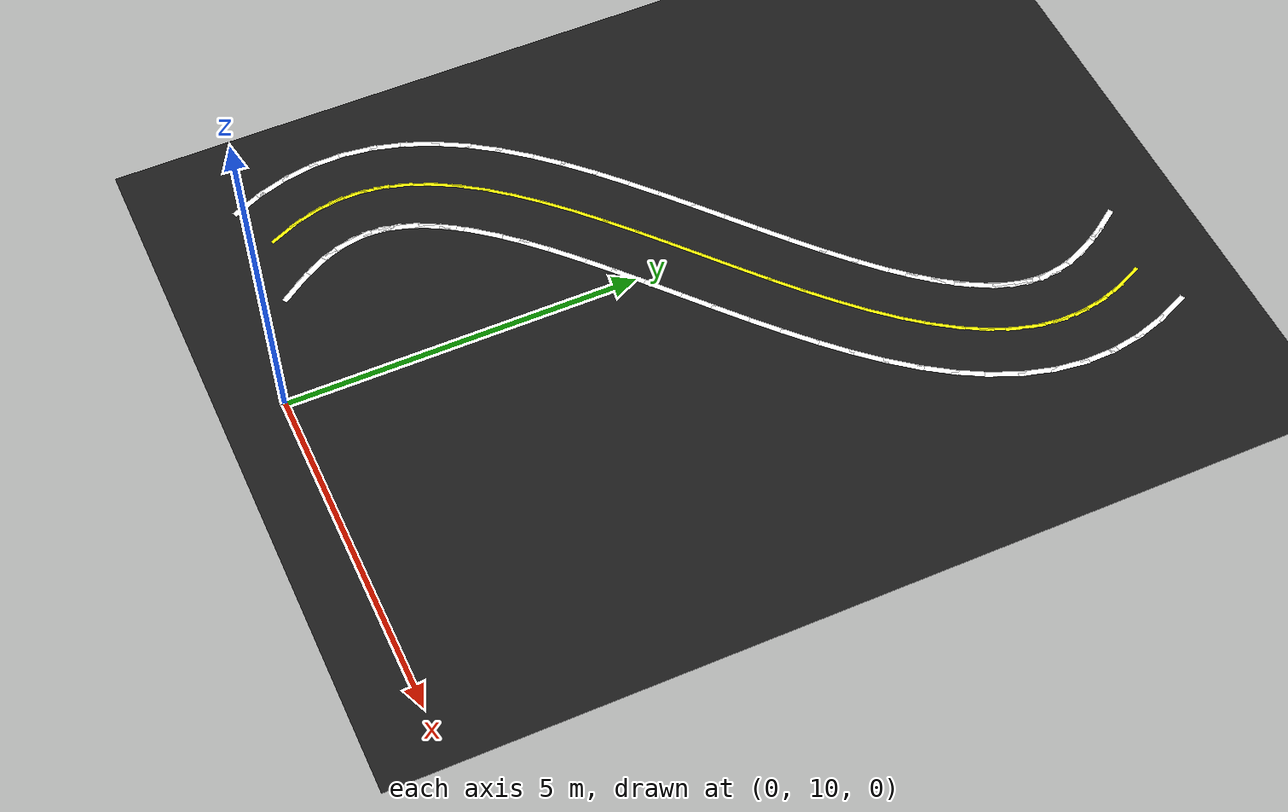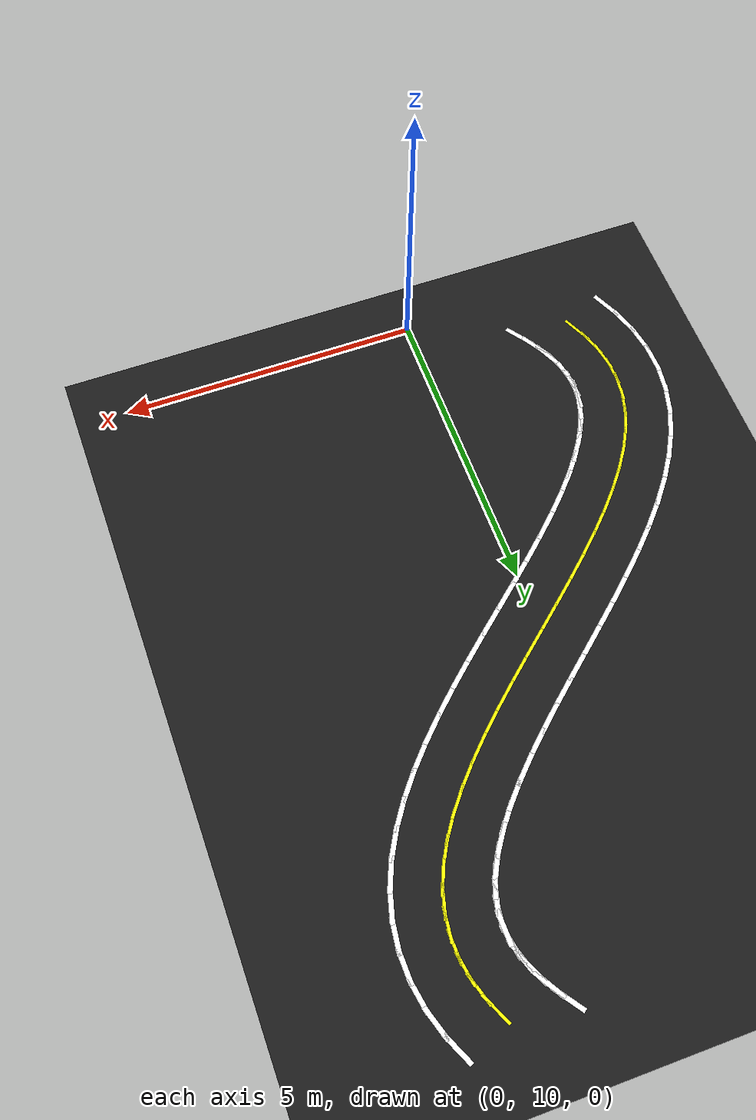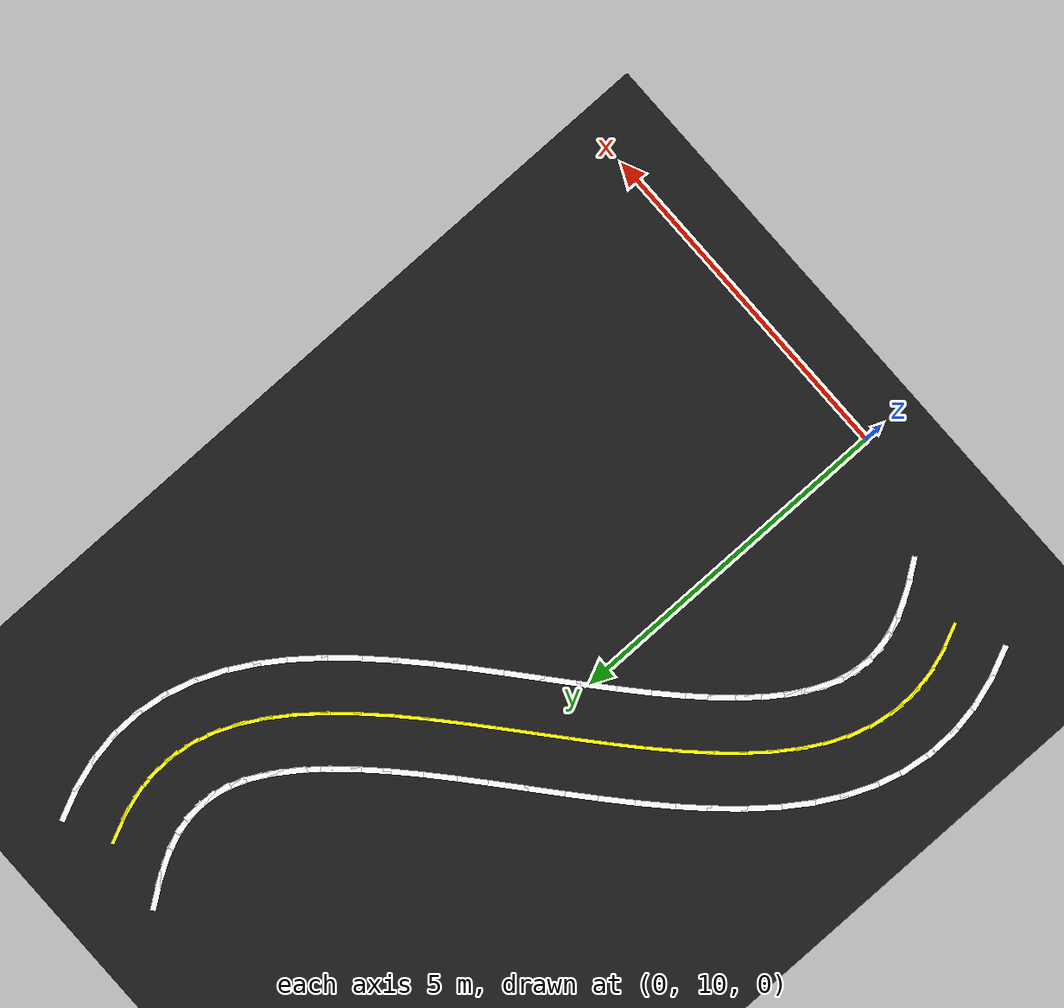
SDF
<sdf version="1.6">
 <world name="double_s_lane_world">
  <model name="ground">
   <static>true</static>
   <link name="link">
    <visual name="v">
     <geometry><plane><normal>0 0 1</normal><size>100 100</size></plane></geometry>
     <material><ambient>0.10 0.10 0.10 1</ambient><diffuse>0.10 0.10 0.10 1</diffuse></material>
    </visual>
    <collision name="c"><geometry><plane><normal>0 0 1</normal><size>100 100</size></plane></geometry></collision>
   </link>
  </model>
  <model name="seg_0097">
   <static>true</static>
   <pose>-1.7767 10.7790 0.002 0 0 2.1905</pose>
   <link name="link">
    <visual name="v">
     <geometry><box><size>0.550 0.080 0.0020</size></box></geometry>
     <material><ambient>1 1 1 1</ambient><diffuse>1 1 1 1</diffuse></material>
    </visual>
   </link>
  </model>
  <model name="seg_0100">
   <static>true</static>
   <pose>-1.9519 11.0473 0.002 0 0 2.1031</pose>
   <link name="link">
    <visual name="v">
     <geometry><box><size>0.550 0.080 0.0020</size></box></geometry>
     <material><ambient>1 1 1 1</ambient><diffuse>1 1 1 1</diffuse></material>
    </visual>
   </link>
  </model>
  <model name="seg_0102">
   <static>true</static>
   <pose>-3.4497 10.6792 0.002 0 0 1.9979</pose>
   <link name="link">
    <visual name="v">
     <geometry><box><size>0.550 0.080 0.0020</size></box></geometry>
     <material><ambient>1 1 1 1</ambient><diffuse>1 1 1 1</diffuse></material>
    </visual>
   </link>
  </model>
  <model name="seg_0103">
   <static>true</static>
   <pose>-2.0844 11.3006 0.002 0 0 1.9979</pose>
   <link name="link">
    <visual name="v">
     <geometry><box><size>0.550 0.080 0.0020</size></box></geometry>
     <material><ambient>1 1 1 1</ambient><diffuse>1 1 1 1</diffuse></material>
    </visual>
   </link>
  </model>
  <model name="seg_0104">
   <static>true</static>
   <pose>-2.7671 10.9899 0.002 0 0 1.9979</pose>
   <link name="link">
    <visual name="v">
     <geometry><box><size>0.550 0.050 0.0020</size></box></geometry>
     <material><ambient>1 1 0 1</ambient><diffuse>1 1 0 1</diffuse></material>
    </visual>
   </link>
  </model>
  <model name="seg_0105">
   <static>true</static>
   <pose>-3.6071 11.0885 0.002 0 0 1.8750</pose>
   <link name="link">
    <visual name="v">
     <geometry><box><size>0.550 0.080 0.0020</size></box></geometry>
     <material><ambient>1 1 1 1</ambient><diffuse>1 1 1 1</diffuse></material>
    </visual>
   </link>
  </model>
  <model name="seg_0106">
   <static>true</static>
   <pose>-2.1760 11.5378 0.002 0 0 1.8750</pose>
   <link name="link">
    <visual name="v">
     <geometry><box><size>0.550 0.080 0.0020</size></box></geometry>
     <material><ambient>1 1 1 1</ambient><diffuse>1 1 1 1</diffuse></material>
    </visual>
   </link>
  </model>
  <model name="seg_0107">
   <static>true</static>
   <pose>-2.8915 11.3131 0.002 0 0 1.8750</pose>
   <link name="link">
    <visual name="v">
     <geometry><box><size>0.550 0.050 0.0020</size></box></geometry>
     <material><ambient>1 1 0 1</ambient><diffuse>1 1 0 1</diffuse></material>
    </visual>
   </link>
  </model>
  <model name="seg_0108">
   <static>true</static>
   <pose>-3.7091 11.5123 0.002 0 0 1.7369</pose>
   <link name="link">
    <visual name="v">
     <geometry><box><size>0.550 0.080 0.0020</size></box></geometry>
     <material><ambient>1 1 1 1</ambient><diffuse>1 1 1 1</diffuse></material>
    </visual>
   </link>
  </model>
  <model name="seg_0109">
   <static>true</static>
   <pose>-2.2298 11.7604 0.002 0 0 1.7369</pose>
   <link name="link">
    <visual name="v">
     <geometry><box><size>0.550 0.080 0.0020</size></box></geometry>
     <material><ambient>1 1 1 1</ambient><diffuse>1 1 1 1</diffuse></material>
    </visual>
   </link>
  </model>
  <model name="seg_0110">
   <static>true</static>
   <pose>-2.9695 11.6364 0.002 0 0 1.7369</pose>
   <link name="link">
    <visual name="v">
     <geometry><box><size>0.550 0.050 0.0020</size></box></geometry>
     <material><ambient>1 1 0 1</ambient><diffuse>1 1 0 1</diffuse></material>
    </visual>
   </link>
  </model>
  <model name="seg_0111">
   <static>true</static>
   <pose>-3.7495 11.9456 0.002 0 0 1.5895</pose>
   <link name="link">
    <visual name="v">
     <geometry><box><size>0.550 0.080 0.0020</size></box></geometry>
     <material><ambient>1 1 1 1</ambient><diffuse>1 1 1 1</diffuse></material>
    </visual>
   </link>
  </model>
  <model name="seg_0112">
   <static>true</static>
   <pose>-2.2498 11.9736 0.002 0 0 1.5895</pose>
   <link name="link">
    <visual name="v">
     <geometry><box><size>0.550 0.080 0.0020</size></box></geometry>
     <material><ambient>1 1 1 1</ambient><diffuse>1 1 1 1</diffuse></material>
    </visual>
   </link>
  </model>
  <model name="seg_0113">
   <static>true</static>
   <pose>-2.9996 11.9596 0.002 0 0 1.5895</pose>
   <link name="link">
    <visual name="v">
     <geometry><box><size>0.550 0.050 0.0020</size></box></geometry>
     <material><ambient>1 1 0 1</ambient><diffuse>1 1 0 1</diffuse></material>
    </visual>
   </link>
  </model>
  <model name="seg_0114">
   <static>true</static>
   <pose>-3.7252 12.3799 0.002 0 0 1.4410</pose>
   <link name="link">
    <visual name="v">
     <geometry><box><size>0.550 0.080 0.0020</size></box></geometry>
     <material><ambient>1 1 1 1</ambient><diffuse>1 1 1 1</diffuse></material>
    </visual>
   </link>
  </model>
  <model name="seg_0115">
   <static>true</static>
   <pose>-2.2378 12.1857 0.002 0 0 1.4410</pose>
   <link name="link">
    <visual name="v">
     <geometry><box><size>0.550 0.080 0.0020</size></box></geometry>
     <material><ambient>1 1 1 1</ambient><diffuse>1 1 1 1</diffuse></material>
    </visual>
   </link>
  </model>
  <model name="seg_0116">
   <static>true</static>
   <pose>-2.9815 12.2828 0.002 0 0 1.4410</pose>
   <link name="link">
    <visual name="v">
     <geometry><box><size>0.550 0.050 0.0020</size></box></geometry>
     <material><ambient>1 1 0 1</ambient><diffuse>1 1 0 1</diffuse></material>
    </visual>
   </link>
  </model>
  <model name="seg_0117">
   <static>true</static>
   <pose>-3.6381 12.8068 0.002 0 0 1.2999</pose>
   <link name="link">
    <visual name="v">
     <geometry><box><size>0.550 0.080 0.0020</size></box></geometry>
     <material><ambient>1 1 1 1</ambient><diffuse>1 1 1 1</diffuse></material>
    </visual>
   </link>
  </model>
  <model name="seg_0118">
   <static>true</static>
   <pose>-2.1928 12.4053 0.002 0 0 1.2999</pose>
   <link name="link">
    <visual name="v">
     <geometry><box><size>0.550 0.080 0.0020</size></box></geometry>
     <material><ambient>1 1 1 1</ambient><diffuse>1 1 1 1</diffuse></material>
    </visual>
   </link>
  </model>
  <model name="seg_0119">
   <static>true</static>
   <pose>-2.9154 12.6061 0.002 0 0 1.2999</pose>
   <link name="link">
    <visual name="v">
     <geometry><box><size>0.550 0.050 0.0020</size></box></geometry>
     <material><ambient>1 1 0 1</ambient><diffuse>1 1 0 1</diffuse></material>
    </visual>
   </link>
  </model>
  <model name="seg_0120">
   <static>true</static>
   <pose>-3.4938 13.2200 0.002 0 0 1.1728</pose>
   <link name="link">
    <visual name="v">
     <geometry><box><size>0.550 0.080 0.0020</size></box></geometry>
     <material><ambient>1 1 1 1</ambient><diffuse>1 1 1 1</diffuse></material>
    </visual>
   </link>
  </model>
  <model name="seg_0121">
   <static>true</static>
   <pose>-2.1111 12.6386 0.002 0 0 1.1728</pose>
   <link name="link">
    <visual name="v">
     <geometry><box><size>0.550 0.080 0.0020</size></box></geometry>
     <material><ambient>1 1 1 1</ambient><diffuse>1 1 1 1</diffuse></material>
    </visual>
   </link>
  </model>
  <model name="seg_0122">
   <static>true</static>
   <pose>-2.8024 12.9293 0.002 0 0 1.1728</pose>
   <link name="link">
    <visual name="v">
     <geometry><box><size>0.550 0.050 0.0020</size></box></geometry>
     <material><ambient>1 1 0 1</ambient><diffuse>1 1 0 1</diffuse></material>
    </visual>
   </link>
  </model>
  <model name="seg_0123">
   <static>true</static>
   <pose>-3.2997 13.6172 0.002 0 0 1.0631</pose>
   <link name="link">
    <visual name="v">
     <geometry><box><size>0.550 0.080 0.0020</size></box></geometry>
     <material><ambient>1 1 1 1</ambient><diffuse>1 1 1 1</diffuse></material>
    </visual>
   </link>
  </model>
  <model name="seg_0124">
   <static>true</static>
   <pose>-1.9890 12.8879 0.002 0 0 1.0631</pose>
   <link name="link">
    <visual name="v">
     <geometry><box><size>0.550 0.080 0.0020</size></box></geometry>
     <material><ambient>1 1 1 1</ambient><diffuse>1 1 1 1</diffuse></material>
    </visual>
   </link>
  </model>
  <model name="seg_0125">
   <static>true</static>
   <pose>-2.6444 13.2525 0.002 0 0 1.0631</pose>
   <link name="link">
    <visual name="v">
     <geometry><box><size>0.550 0.050 0.0020</size></box></geometry>
     <material><ambient>1 1 0 1</ambient><diffuse>1 1 0 1</diffuse></material>
    </visual>
   </link>
  </model>
  <model name="seg_0126">
   <static>true</static>
   <pose>-3.0630 13.9989 0.002 0 0 0.9713</pose>
   <link name="link">
    <visual name="v">
     <geometry><box><size>0.550 0.080 0.0020</size></box></geometry>
     <material><ambient>1 1 1 1</ambient><diffuse>1 1 1 1</diffuse></material>
    </visual>
   </link>
  </model>
  <model name="seg_0127">
   <static>true</static>
   <pose>-1.8245 13.1526 0.002 0 0 0.9713</pose>
   <link name="link">
    <visual name="v">
     <geometry><box><size>0.550 0.080 0.0020</size></box></geometry>
     <material><ambient>1 1 1 1</ambient><diffuse>1 1 1 1</diffuse></material>
    </visual>
   </link>
  </model>
  <model name="seg_0128">
   <static>true</static>
   <pose>-2.4437 13.5758 0.002 0 0 0.9713</pose>
   <link name="link">
    <visual name="v">
     <geometry><box><size>0.550 0.050 0.0020</size></box></geometry>
     <material><ambient>1 1 0 1</ambient><diffuse>1 1 0 1</diffuse></material>
    </visual>
   </link>
  </model>
  <model name="seg_0129">
   <static>true</static>
   <pose>-2.7896 14.3673 0.002 0 0 0.8965</pose>
   <link name="link">
    <visual name="v">
     <geometry><box><size>0.550 0.080 0.0020</size></box></geometry>
     <material><ambient>1 1 1 1</ambient><diffuse>1 1 1 1</diffuse></material>
    </visual>
   </link>
  </model>
  <model name="seg_0130">
   <static>true</static>
   <pose>-1.6179 13.4307 0.002 0 0 0.8965</pose>
   <link name="link">
    <visual name="v">
     <geometry><box><size>0.550 0.080 0.0020</size></box></geometry>
     <material><ambient>1 1 1 1</ambient><diffuse>1 1 1 1</diffuse></material>
    </visual>
   </link>
  </model>
  <model name="seg_0131">
   <static>true</static>
   <pose>-2.2038 13.8990 0.002 0 0 0.8965</pose>
   <link name="link">
    <visual name="v">
     <geometry><box><size>0.550 0.050 0.0020</size></box></geometry>
     <material><ambient>1 1 0 1</ambient><diffuse>1 1 0 1</diffuse></material>
    </visual>
   </link>
  </model>
  <model name="seg_0132">
   <static>true</static>
   <pose>-2.4851 14.7247 0.002 0 0 0.8366</pose>
   <link name="link">
    <visual name="v">
     <geometry><box><size>0.550 0.080 0.0020</size></box></geometry>
     <material><ambient>1 1 1 1</ambient><diffuse>1 1 1 1</diffuse></material>
    </visual>
   </link>
  </model>
  <model name="seg_0133">
   <static>true</static>
   <pose>-1.3716 13.7197 0.002 0 0 0.8366</pose>
   <link name="link">
    <visual name="v">
     <geometry><box><size>0.550 0.080 0.0020</size></box></geometry>
     <material><ambient>1 1 1 1</ambient><diffuse>1 1 1 1</diffuse></material>
    </visual>
   </link>
  </model>
  <model name="seg_0134">
   <static>true</static>
   <pose>-1.9284 14.2222 0.002 0 0 0.8366</pose>
   <link name="link">
    <visual name="v">
     <geometry><box><size>0.550 0.050 0.0020</size></box></geometry>
     <material><ambient>1 1 0 1</ambient><diffuse>1 1 0 1</diffuse></material>
    </visual>
   </link>
  </model>
  <model name="seg_0135">
   <static>true</static>
   <pose>-2.1546 15.0734 0.002 0 0 0.7899</pose>
   <link name="link">
    <visual name="v">
     <geometry><box><size>0.550 0.080 0.0020</size></box></geometry>
     <material><ambient>1 1 1 1</ambient><diffuse>1 1 1 1</diffuse></material>
    </visual>
   </link>
  </model>
  <model name="seg_0136">
   <static>true</static>
   <pose>-1.0892 14.0175 0.002 0 0 0.7899</pose>
   <link name="link">
    <visual name="v">
     <geometry><box><size>0.550 0.080 0.0020</size></box></geometry>
     <material><ambient>1 1 1 1</ambient><diffuse>1 1 1 1</diffuse></material>
    </visual>
   </link>
  </model>
  <model name="seg_0137">
   <static>true</static>
   <pose>-1.6219 14.5455 0.002 0 0 0.7899</pose>
   <link name="link">
    <visual name="v">
     <geometry><box><size>0.550 0.050 0.0020</size></box></geometry>
     <material><ambient>1 1 0 1</ambient><diffuse>1 1 0 1</diffuse></material>
    </visual>
   </link>
  </model>
  <model name="seg_0138">
   <static>true</static>
   <pose>-1.8031 15.4151 0.002 0 0 0.7545</pose>
   <link name="link">
    <visual name="v">
     <geometry><box><size>0.550 0.080 0.0020</size></box></geometry>
     <material><ambient>1 1 1 1</ambient><diffuse>1 1 1 1</diffuse></material>
    </visual>
   </link>
  </model>
  <model name="seg_0139">
   <static>true</static>
   <pose>-0.7757 14.3222 0.002 0 0 0.7545</pose>
   <link name="link">
    <visual name="v">
     <geometry><box><size>0.550 0.080 0.0020</size></box></geometry>
     <material><ambient>1 1 1 1</ambient><diffuse>1 1 1 1</diffuse></material>
    </visual>
   </link>
  </model>
  <model name="seg_0140">
   <static>true</static>
   <pose>-1.2894 14.8687 0.002 0 0 0.7545</pose>
   <link name="link">
    <visual name="v">
     <geometry><box><size>0.550 0.050 0.0020</size></box></geometry>
     <material><ambient>1 1 0 1</ambient><diffuse>1 1 0 1</diffuse></material>
    </visual>
   </link>
  </model>
  <model name="seg_0141">
   <static>true</static>
   <pose>-1.4358 15.7512 0.002 0 0 0.7292</pose>
   <link name="link">
    <visual name="v">
     <geometry><box><size>0.550 0.080 0.0020</size></box></geometry>
     <material><ambient>1 1 1 1</ambient><diffuse>1 1 1 1</diffuse></material>
    </visual>
   </link>
  </model>
  <model name="seg_0142">
   <static>true</static>
   <pose>-0.4364 14.6326 0.002 0 0 0.7292</pose>
   <link name="link">
    <visual name="v">
     <geometry><box><size>0.550 0.080 0.0020</size></box></geometry>
     <material><ambient>1 1 1 1</ambient><diffuse>1 1 1 1</diffuse></material>
    </visual>
   </link>
  </model>
  <model name="seg_0143">
   <static>true</static>
   <pose>-0.9361 15.1919 0.002 0 0 0.7292</pose>
   <link name="link">
    <visual name="v">
     <geometry><box><size>0.550 0.050 0.0020</size></box></geometry>
     <material><ambient>1 1 0 1</ambient><diffuse>1 1 0 1</diffuse></material>
    </visual>
   </link>
  </model>
  <model name="seg_0144">
   <static>true</static>
   <pose>-1.0582 16.0825 0.002 0 0 0.7128</pose>
   <link name="link">
    <visual name="v">
     <geometry><box><size>0.550 0.080 0.0020</size></box></geometry>
     <material><ambient>1 1 1 1</ambient><diffuse>1 1 1 1</diffuse></material>
    </visual>
   </link>
  </model>
  <model name="seg_0145">
   <static>true</static>
   <pose>-0.0773 14.9478 0.002 0 0 0.7128</pose>
   <link name="link">
    <visual name="v">
     <geometry><box><size>0.550 0.080 0.0020</size></box></geometry>
     <material><ambient>1 1 1 1</ambient><diffuse>1 1 1 1</diffuse></material>
    </visual>
   </link>
  </model>
  <model name="seg_0146">
   <static>true</static>
   <pose>-0.5678 15.5152 0.002 0 0 0.7128</pose>
   <link name="link">
    <visual name="v">
     <geometry><box><size>0.550 0.050 0.0020</size></box></geometry>
     <material><ambient>1 1 0 1</ambient><diffuse>1 1 0 1</diffuse></material>
    </visual>
   </link>
  </model>
  <model name="seg_0147">
   <static>true</static>
   <pose>-0.6762 16.4097 0.002 0 0 0.7048</pose>
   <link name="link">
    <visual name="v">
     <geometry><box><size>0.550 0.080 0.0020</size></box></geometry>
     <material><ambient>1 1 1 1</ambient><diffuse>1 1 1 1</diffuse></material>
    </visual>
   </link>
  </model>
  <model name="seg_0148">
   <static>true</static>
   <pose>0.2956 15.2671 0.002 0 0 0.7048</pose>
   <link name="link">
    <visual name="v">
     <geometry><box><size>0.550 0.080 0.0020</size></box></geometry>
     <material><ambient>1 1 1 1</ambient><diffuse>1 1 1 1</diffuse></material>
    </visual>
   </link>
  </model>
  <model name="seg_0149">
   <static>true</static>
   <pose>-0.1903 15.8384 0.002 0 0 0.7048</pose>
   <link name="link">
    <visual name="v">
     <geometry><box><size>0.550 0.050 0.0020</size></box></geometry>
     <material><ambient>1 1 0 1</ambient><diffuse>1 1 0 1</diffuse></material>
    </visual>
   </link>
  </model>
  <model name="seg_0150">
   <static>true</static>
   <pose>-0.2956 16.7329 0.002 0 0 0.7048</pose>
   <link name="link">
    <visual name="v">
     <geometry><box><size>0.550 0.080 0.0020</size></box></geometry>
     <material><ambient>1 1 1 1</ambient><diffuse>1 1 1 1</diffuse></material>
    </visual>
   </link>
  </model>
  <model name="seg_0151">
   <static>true</static>
   <pose>0.6762 15.5903 0.002 0 0 0.7048</pose>
   <link name="link">
    <visual name="v">
     <geometry><box><size>0.550 0.080 0.0020</size></box></geometry>
     <material><ambient>1 1 1 1</ambient><diffuse>1 1 1 1</diffuse></material>
    </visual>
   </link>
  </model>
  <model name="seg_0152">
   <static>true</static>
   <pose>0.1903 16.1616 0.002 0 0 0.7048</pose>
   <link name="link">
    <visual name="v">
     <geometry><box><size>0.550 0.050 0.0020</size></box></geometry>
     <material><ambient>1 1 0 1</ambient><diffuse>1 1 0 1</diffuse></material>
    </visual>
   </link>
  </model>
  <model name="seg_0153">
   <static>true</static>
   <pose>0.0773 17.0522 0.002 0 0 0.7128</pose>
   <link name="link">
    <visual name="v">
     <geometry><box><size>0.550 0.080 0.0020</size></box></geometry>
     <material><ambient>1 1 1 1</ambient><diffuse>1 1 1 1</diffuse></material>
    </visual>
   </link>
  </model>
  <model name="seg_0154">
   <static>true</static>
   <pose>1.0582 15.9175 0.002 0 0 0.7128</pose>
   <link name="link">
    <visual name="v">
     <geometry><box><size>0.550 0.080 0.0020</size></box></geometry>
     <material><ambient>1 1 1 1</ambient><diffuse>1 1 1 1</diffuse></material>
    </visual>
   </link>
  </model>
  <model name="seg_0155">
   <static>true</static>
   <pose>0.5678 16.4848 0.002 0 0 0.7128</pose>
   <link name="link">
    <visual name="v">
     <geometry><box><size>0.550 0.050 0.0020</size></box></geometry>
     <material><ambient>1 1 0 1</ambient><diffuse>1 1 0 1</diffuse></material>
    </visual>
   </link>
  </model>
  <model name="seg_0156">
   <static>true</static>
   <pose>0.4364 17.3674 0.002 0 0 0.7292</pose>
   <link name="link">
    <visual name="v">
     <geometry><box><size>0.550 0.080 0.0020</size></box></geometry>
     <material><ambient>1 1 1 1</ambient><diffuse>1 1 1 1</diffuse></material>
    </visual>
   </link>
  </model>
  <model name="seg_0157">
   <static>true</static>
   <pose>1.4358 16.2488 0.002 0 0 0.7292</pose>
   <link name="link">
    <visual name="v">
     <geometry><box><size>0.550 0.080 0.0020</size></box></geometry>
     <material><ambient>1 1 1 1</ambient><diffuse>1 1 1 1</diffuse></material>
    </visual>
   </link>
  </model>
  <model name="seg_0158">
   <static>true</static>
   <pose>0.9361 16.8081 0.002 0 0 0.7292</pose>
   <link name="link">
    <visual name="v">
     <geometry><box><size>0.550 0.050 0.0020</size></box></geometry>
     <material><ambient>1 1 0 1</ambient><diffuse>1 1 0 1</diffuse></material>
    </visual>
   </link>
  </model>
  <model name="seg_0159">
   <static>true</static>
   <pose>0.7757 17.6778 0.002 0 0 0.7545</pose>
   <link name="link">
    <visual name="v">
     <geometry><box><size>0.550 0.080 0.0020</size></box></geometry>
     <material><ambient>1 1 1 1</ambient><diffuse>1 1 1 1</diffuse></material>
    </visual>
   </link>
  </model>
  <model name="seg_0160">
   <static>true</static>
   <pose>1.8031 16.5849 0.002 0 0 0.7545</pose>
   <link name="link">
    <visual name="v">
     <geometry><box><size>0.550 0.080 0.0020</size></box></geometry>
     <material><ambient>1 1 1 1</ambient><diffuse>1 1 1 1</diffuse></material>
    </visual>
   </link>
  </model>
  <model name="seg_0161">
   <static>true</static>
   <pose>1.2894 17.1313 0.002 0 0 0.7545</pose>
   <link name="link">
    <visual name="v">
     <geometry><box><size>0.550 0.050 0.0020</size></box></geometry>
     <material><ambient>1 1 0 1</ambient><diffuse>1 1 0 1</diffuse></material>
    </visual>
   </link>
  </model>
  <model name="seg_0162">
   <static>true</static>
   <pose>1.0892 17.9825 0.002 0 0 0.7899</pose>
   <link name="link">
    <visual name="v">
     <geometry><box><size>0.550 0.080 0.0020</size></box></geometry>
     <material><ambient>1 1 1 1</ambient><diffuse>1 1 1 1</diffuse></material>
    </visual>
   </link>
  </model>
  <model name="seg_0163">
   <static>true</static>
   <pose>2.1546 16.9266 0.002 0 0 0.7899</pose>
   <link name="link">
    <visual name="v">
     <geometry><box><size>0.550 0.080 0.0020</size></box></geometry>
     <material><ambient>1 1 1 1</ambient><diffuse>1 1 1 1</diffuse></material>
    </visual>
   </link>
  </model>
  <model name="seg_0164">
   <static>true</static>
   <pose>1.6219 17.4545 0.002 0 0 0.7899</pose>
   <link name="link">
    <visual name="v">
     <geometry><box><size>0.550 0.050 0.0020</size></box></geometry>
     <material><ambient>1 1 0 1</ambient><diffuse>1 1 0 1</diffuse></material>
    </visual>
   </link>
  </model>
  <model name="seg_0165">
   <static>true</static>
   <pose>1.3716 18.2803 0.002 0 0 0.8366</pose>
   <link name="link">
    <visual name="v">
     <geometry><box><size>0.550 0.080 0.0020</size></box></geometry>
     <material><ambient>1 1 1 1</ambient><diffuse>1 1 1 1</diffuse></material>
    </visual>
   </link>
  </model>
  <model name="seg_0166">
   <static>true</static>
   <pose>2.4851 17.2753 0.002 0 0 0.8366</pose>
   <link name="link">
    <visual name="v">
     <geometry><box><size>0.550 0.080 0.0020</size></box></geometry>
     <material><ambient>1 1 1 1</ambient><diffuse>1 1 1 1</diffuse></material>
    </visual>
   </link>
  </model>
  <model name="seg_0167">
   <static>true</static>
   <pose>1.9284 17.7778 0.002 0 0 0.8366</pose>
   <link name="link">
    <visual name="v">
     <geometry><box><size>0.550 0.050 0.0020</size></box></geometry>
     <material><ambient>1 1 0 1</ambient><diffuse>1 1 0 1</diffuse></material>
    </visual>
   </link>
  </model>
  <model name="seg_0168">
   <static>true</static>
   <pose>1.6179 18.5693 0.002 0 0 0.8965</pose>
   <link name="link">
    <visual name="v">
     <geometry><box><size>0.550 0.080 0.0020</size></box></geometry>
     <material><ambient>1 1 1 1</ambient><diffuse>1 1 1 1</diffuse></material>
    </visual>
   </link>
  </model>
  <model name="seg_0169">
   <static>true</static>
   <pose>2.7896 17.6327 0.002 0 0 0.8965</pose>
   <link name="link">
    <visual name="v">
     <geometry><box><size>0.550 0.080 0.0020</size></box></geometry>
     <material><ambient>1 1 1 1</ambient><diffuse>1 1 1 1</diffuse></material>
    </visual>
   </link>
  </model>
  <model name="seg_0170">
   <static>true</static>
   <pose>2.2038 18.1010 0.002 0 0 0.8965</pose>
   <link name="link">
    <visual name="v">
     <geometry><box><size>0.550 0.050 0.0020</size></box></geometry>
     <material><ambient>1 1 0 1</ambient><diffuse>1 1 0 1</diffuse></material>
    </visual>
   </link>
  </model>
  <model name="seg_0171">
   <static>true</static>
   <pose>1.8245 18.8474 0.002 0 0 0.9713</pose>
   <link name="link">
    <visual name="v">
     <geometry><box><size>0.550 0.080 0.0020</size></box></geometry>
     <material><ambient>1 1 1 1</ambient><diffuse>1 1 1 1</diffuse></material>
    </visual>
   </link>
  </model>
  <model name="seg_0172">
   <static>true</static>
   <pose>3.0630 18.0011 0.002 0 0 0.9713</pose>
   <link name="link">
    <visual name="v">
     <geometry><box><size>0.550 0.080 0.0020</size></box></geometry>
     <material><ambient>1 1 1 1</ambient><diffuse>1 1 1 1</diffuse></material>
    </visual>
   </link>
  </model>
  <model name="seg_0173">
   <static>true</static>
   <pose>2.4437 18.4242 0.002 0 0 0.9713</pose>
   <link name="link">
    <visual name="v">
     <geometry><box><size>0.550 0.050 0.0020</size></box></geometry>
     <material><ambient>1 1 0 1</ambient><diffuse>1 1 0 1</diffuse></material>
    </visual>
   </link>
  </model>
  <model name="seg_0174">
   <static>true</static>
   <pose>1.9890 19.1121 0.002 0 0 1.0631</pose>
   <link name="link">
    <visual name="v">
     <geometry><box><size>0.550 0.080 0.0020</size></box></geometry>
     <material><ambient>1 1 1 1</ambient><diffuse>1 1 1 1</diffuse></material>
    </visual>
   </link>
  </model>
  <model name="seg_0175">
   <static>true</static>
   <pose>3.2997 18.3828 0.002 0 0 1.0631</pose>
   <link name="link">
    <visual name="v">
     <geometry><box><size>0.550 0.080 0.0020</size></box></geometry>
     <material><ambient>1 1 1 1</ambient><diffuse>1 1 1 1</diffuse></material>
    </visual>
   </link>
  </model>
  <model name="seg_0176">
   <static>true</static>
   <pose>2.6444 18.7475 0.002 0 0 1.0631</pose>
   <link name="link">
    <visual name="v">
     <geometry><box><size>0.550 0.050 0.0020</size></box></geometry>
     <material><ambient>1 1 0 1</ambient><diffuse>1 1 0 1</diffuse></material>
    </visual>
   </link>
  </model>
  <model name="seg_0177">
   <static>true</static>
   <pose>2.1111 19.3614 0.002 0 0 1.1728</pose>
   <link name="link">
    <visual name="v">
     <geometry><box><size>0.550 0.080 0.0020</size></box></geometry>
     <material><ambient>1 1 1 1</ambient><diffuse>1 1 1 1</diffuse></material>
    </visual>
   </link>
  </model>
  <model name="seg_0178">
   <static>true</static>
   <pose>3.4938 18.7800 0.002 0 0 1.1728</pose>
   <link name="link">
    <visual name="v">
     <geometry><box><size>0.550 0.080 0.0020</size></box></geometry>
     <material><ambient>1 1 1 1</ambient><diffuse>1 1 1 1</diffuse></material>
    </visual>
   </link>
  </model>
  <model name="seg_0179">
   <static>true</static>
   <pose>2.8024 19.0707 0.002 0 0 1.1728</pose>
   <link name="link">
    <visual name="v">
     <geometry><box><size>0.550 0.050 0.0020</size></box></geometry>
     <material><ambient>1 1 0 1</ambient><diffuse>1 1 0 1</diffuse></material>
    </visual>
   </link>
  </model>
  <model name="seg_0180">
   <static>true</static>
   <pose>2.1928 19.5947 0.002 0 0 1.2999</pose>
   <link name="link">
    <visual name="v">
     <geometry><box><size>0.550 0.080 0.0020</size></box></geometry>
     <material><ambient>1 1 1 1</ambient><diffuse>1 1 1 1</diffuse></material>
    </visual>
   </link>
  </model>
  <model name="seg_0181">
   <static>true</static>
   <pose>3.6381 19.1932 0.002 0 0 1.2999</pose>
   <link name="link">
    <visual name="v">
     <geometry><box><size>0.550 0.080 0.0020</size></box></geometry>
     <material><ambient>1 1 1 1</ambient><diffuse>1 1 1 1</diffuse></material>
    </visual>
   </link>
  </model>
  <model name="seg_0182">
   <static>true</static>
   <pose>2.9154 19.3939 0.002 0 0 1.2999</pose>
   <link name="link">
    <visual name="v">
     <geometry><box><size>0.550 0.050 0.0020</size></box></geometry>
     <material><ambient>1 1 0 1</ambient><diffuse>1 1 0 1</diffuse></material>
    </visual>
   </link>
  </model>
  <model name="seg_0183">
   <static>true</static>
   <pose>2.2378 19.8143 0.002 0 0 1.4410</pose>
   <link name="link">
    <visual name="v">
     <geometry><box><size>0.550 0.080 0.0020</size></box></geometry>
     <material><ambient>1 1 1 1</ambient><diffuse>1 1 1 1</diffuse></material>
    </visual>
   </link>
  </model>
  <model name="seg_0184">
   <static>true</static>
   <pose>3.7252 19.6201 0.002 0 0 1.4410</pose>
   <link name="link">
    <visual name="v">
     <geometry><box><size>0.550 0.080 0.0020</size></box></geometry>
     <material><ambient>1 1 1 1</ambient><diffuse>1 1 1 1</diffuse></material>
    </visual>
   </link>
  </model>
  <model name="seg_0185">
   <static>true</static>
   <pose>2.9815 19.7172 0.002 0 0 1.4410</pose>
   <link name="link">
    <visual name="v">
     <geometry><box><size>0.550 0.050 0.0020</size></box></geometry>
     <material><ambient>1 1 0 1</ambient><diffuse>1 1 0 1</diffuse></material>
    </visual>
   </link>
  </model>
  <model name="seg_0186">
   <static>true</static>
   <pose>2.2498 20.0264 0.002 0 0 1.5895</pose>
   <link name="link">
    <visual name="v">
     <geometry><box><size>0.550 0.080 0.0020</size></box></geometry>
     <material><ambient>1 1 1 1</ambient><diffuse>1 1 1 1</diffuse></material>
    </visual>
   </link>
  </model>
  <model name="seg_0187">
   <static>true</static>
   <pose>3.7495 20.0544 0.002 0 0 1.5895</pose>
   <link name="link">
    <visual name="v">
     <geometry><box><size>0.550 0.080 0.0020</size></box></geometry>
     <material><ambient>1 1 1 1</ambient><diffuse>1 1 1 1</diffuse></material>
    </visual>
   </link>
  </model>
  <model name="seg_0188">
   <static>true</static>
   <pose>2.9996 20.0404 0.002 0 0 1.5895</pose>
   <link name="link">
    <visual name="v">
     <geometry><box><size>0.550 0.050 0.0020</size></box></geometry>
     <material><ambient>1 1 0 1</ambient><diffuse>1 1 0 1</diffuse></material>
    </visual>
   </link>
  </model>
  <model name="seg_0189">
   <static>true</static>
   <pose>2.2298 20.2396 0.002 0 0 1.7369</pose>
   <link name="link">
    <visual name="v">
     <geometry><box><size>0.550 0.080 0.0020</size></box></geometry>
     <material><ambient>1 1 1 1</ambient><diffuse>1 1 1 1</diffuse></material>
    </visual>
   </link>
  </model>
  <model name="seg_0190">
   <static>true</static>
   <pose>3.7091 20.4877 0.002 0 0 1.7369</pose>
   <link name="link">
    <visual name="v">
     <geometry><box><size>0.550 0.080 0.0020</size></box></geometry>
     <material><ambient>1 1 1 1</ambient><diffuse>1 1 1 1</diffuse></material>
    </visual>
   </link>
  </model>
  <model name="seg_0191">
   <static>true</static>
   <pose>2.9695 20.3636 0.002 0 0 1.7369</pose>
   <link name="link">
    <visual name="v">
     <geometry><box><size>0.550 0.050 0.0020</size></box></geometry>
     <material><ambient>1 1 0 1</ambient><diffuse>1 1 0 1</diffuse></material>
    </visual>
   </link>
  </model>
  <model name="seg_0192">
   <static>true</static>
   <pose>2.1760 20.4622 0.002 0 0 1.8750</pose>
   <link name="link">
    <visual name="v">
     <geometry><box><size>0.550 0.080 0.0020</size></box></geometry>
     <material><ambient>1 1 1 1</ambient><diffuse>1 1 1 1</diffuse></material>
    </visual>
   </link>
  </model>
  <model name="seg_0193">
   <static>true</static>
   <pose>3.6071 20.9115 0.002 0 0 1.8750</pose>
   <link name="link">
    <visual name="v">
     <geometry><box><size>0.550 0.080 0.0020</size></box></geometry>
     <material><ambient>1 1 1 1</ambient><diffuse>1 1 1 1</diffuse></material>
    </visual>
   </link>
  </model>
  <model name="seg_0194">
   <static>true</static>
   <pose>2.8915 20.6869 0.002 0 0 1.8750</pose>
   <link name="link">
    <visual name="v">
     <geometry><box><size>0.550 0.050 0.0020</size></box></geometry>
     <material><ambient>1 1 0 1</ambient><diffuse>1 1 0 1</diffuse></material>
    </visual>
   </link>
  </model>
  <model name="seg_0195">
   <static>true</static>
   <pose>2.0844 20.6994 0.002 0 0 1.9979</pose>
   <link name="link">
    <visual name="v">
     <geometry><box><size>0.550 0.080 0.0020</size></box></geometry>
     <material><ambient>1 1 1 1</ambient><diffuse>1 1 1 1</diffuse></material>
    </visual>
   </link>
  </model>
  <model name="seg_0196">
   <static>true</static>
   <pose>3.4497 21.3208 0.002 0 0 1.9979</pose>
   <link name="link">
    <visual name="v">
     <geometry><box><size>0.550 0.080 0.0020</size></box></geometry>
     <material><ambient>1 1 1 1</ambient><diffuse>1 1 1 1</diffuse></material>
    </visual>
   </link>
  </model>
  <model name="seg_0197">
   <static>true</static>
   <pose>2.7671 21.0101 0.002 0 0 1.9979</pose>
   <link name="link">
    <visual name="v">
     <geometry><box><size>0.550 0.050 0.0020</size></box></geometry>
     <material><ambient>1 1 0 1</ambient><diffuse>1 1 0 1</diffuse></material>
    </visual>
   </link>
  </model>
  <model name="seg_0198">
   <static>true</static>
   <pose>1.9519 20.9527 0.002 0 0 2.1031</pose>
   <link name="link">
    <visual name="v">
     <geometry><box><size>0.550 0.080 0.0020</size></box></geometry>
     <material><ambient>1 1 1 1</ambient><diffuse>1 1 1 1</diffuse></material>
    </visual>
   </link>
  </model>
  <model name="seg_0201">
   <static>true</static>
   <pose>1.7767 21.2210 0.002 0 0 2.1905</pose>
   <link name="link">
    <visual name="v">
     <geometry><box><size>0.550 0.080 0.0020</size></box></geometry>
     <material><ambient>1 1 1 1</ambient><diffuse>1 1 1 1</diffuse></material>
    </visual>
   </link>
  </model>
 </world>
</sdf>
